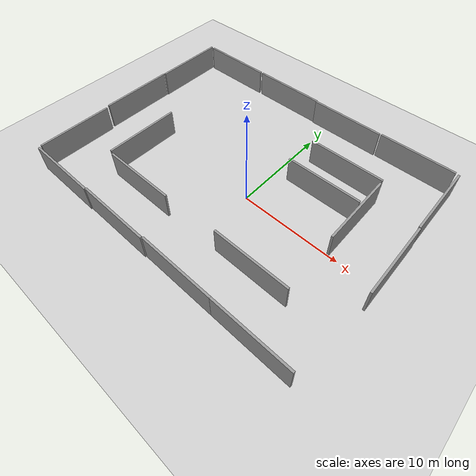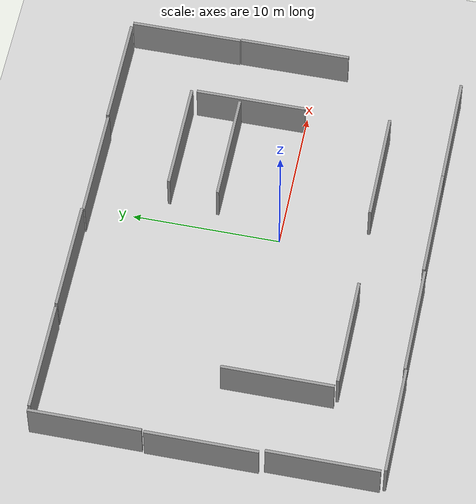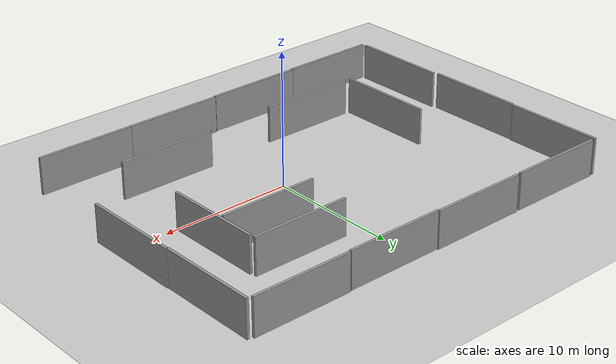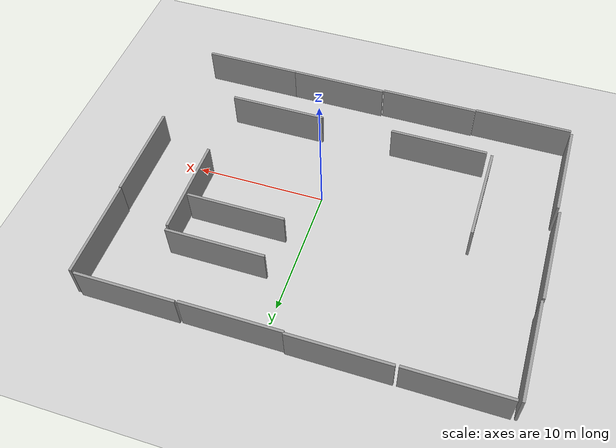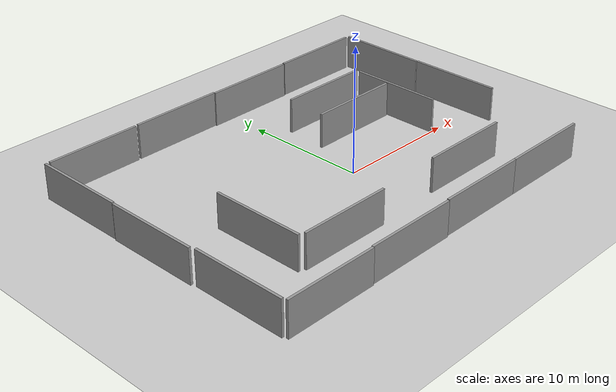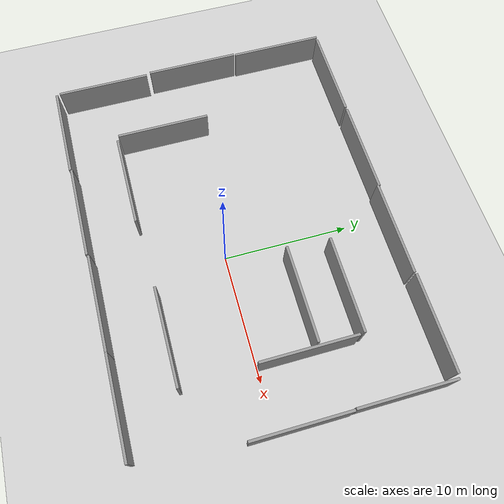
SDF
<sdf version="1.6">
 <world name="default">
  <light name="sun" type="directional">
   <pose>0 0 10 0 -0 0</pose>
   <diffuse>0.8 0.8 0.8 1</diffuse>
   <specular>0.2 0.2 0.2 1</specular>
   <attenuation>
    <range>1000</range>
    <constant>0.9</constant>
    <linear>0.01</linear>
    <quadratic>0.001</quadratic>
   </attenuation>
   <direction>-0.5 0.1 -0.9</direction>
  </light>
  <model name="ground_plane">
   <static>1</static>
   <link name="link">
    <collision name="collision">
     <geometry><plane><normal>0 0 1</normal><size>100 100</size></plane></geometry>
     <surface><friction><ode><mu>100</mu><mu2>50</mu2></ode></friction></surface>
    </collision>
    <visual name="visual">
     <cast_shadows>0</cast_shadows>
     <geometry><plane><normal>0 0 1</normal><size>100 100</size></plane></geometry>
     <material>
      <script><uri>file://media/materials/scripts/gazebo.material</uri><name>Gazebo/Grey</name></script>
     </material>
    </visual>
   </link>
  </model>
  <gravity>0 0 -9.8</gravity>
  <magnetic_field>6e-06 2.3e-05 -4.2e-05</magnetic_field>
  <atmosphere type="adiabatic"/>
  <physics name="default_physics" default="0" type="ode">
   <max_step_size>0.001</max_step_size>
   <real_time_factor>1</real_time_factor>
   <real_time_update_rate>1000</real_time_update_rate>
  </physics>
  <scene><ambient>0.4 0.4 0.4 1</ambient><background>0.7 0.7 0.7 1</background><shadows>1</shadows></scene>
  <audio><device>default</device></audio>
  <spherical_coordinates>
   <surface_model>EARTH_WGS84</surface_model>
   <latitude_deg>0</latitude_deg>
   <longitude_deg>0</longitude_deg>
   <elevation>0</elevation>
   <heading_deg>0</heading_deg>
  </spherical_coordinates>
  <model name="grey_wall">
   <static>1</static>
   <link name="link">
    <pose>0 0 1.4 0 -0 0</pose>
    <collision name="collision"><geometry><box><size>7.5 0.2 2.8</size></box></geometry></collision>
    <visual name="visual">
     <cast_shadows>0</cast_shadows>
     <geometry><box><size>7.5 0.2 2.8</size></box></geometry>
     <material>
      <script>
       <uri>model://grey_wall/materials/scripts</uri>
       <uri>model://grey_wall/materials/textures</uri>
       <name>vrc/grey_wall</name>
      </script>
     </material>
    </visual>
   </link>
   <pose>13.7654 1.64118 0 0 0 -1.56933</pose>
  </model>
  <model name="grey_wall_clone">
   <static>1</static>
   <link name="link">
    <pose>0 0 1.4 0 -0 0</pose>
    <collision name="collision"><geometry><box><size>7.5 0.2 2.8</size></box></geometry></collision>
    <visual name="visual">
     <cast_shadows>0</cast_shadows>
     <geometry><box><size>7.5 0.2 2.8</size></box></geometry>
     <material>
      <script>
       <uri>model://grey_wall/materials/scripts</uri>
       <uri>model://grey_wall/materials/textures</uri>
       <name>vrc/grey_wall</name>
      </script>
     </material>
    </visual>
   </link>
   <pose>5.50074 -5.76204 0 0 -0 0</pose>
  </model>
  <model name="grey_wall_clone_0">
   <static>1</static>
   <link name="link">
    <pose>0 0 1.4 0 -0 0</pose>
    <collision name="collision"><geometry><box><size>7.5 0.2 2.8</size></box></geometry></collision>
    <visual name="visual">
     <cast_shadows>0</cast_shadows>
     <geometry><box><size>7.5 0.2 2.8</size></box></geometry>
     <material>
      <script>
       <uri>model://grey_wall/materials/scripts</uri>
       <uri>model://grey_wall/materials/textures</uri>
       <name>vrc/grey_wall</name>
      </script>
     </material>
    </visual>
   </link>
   <pose>13.6993 9.19185 0 0 0 -1.56933</pose>
  </model>
  <model name="grey_wall_clone_clone">
   <static>1</static>
   <link name="link">
    <pose>0 0 1.4 0 -0 0</pose>
    <collision name="collision"><geometry><box><size>7.5 0.2 2.8</size></box></geometry></collision>
    <visual name="visual">
     <cast_shadows>0</cast_shadows>
     <geometry><box><size>7.5 0.2 2.8</size></box></geometry>
     <material>
      <script>
       <uri>model://grey_wall/materials/scripts</uri>
       <uri>model://grey_wall/materials/textures</uri>
       <name>vrc/grey_wall</name>
      </script>
     </material>
    </visual>
   </link>
   <pose>5.03175 4.47572 0 0 -0 0</pose>
  </model>
  <model name="grey_wall_clone_clone_0">
   <static>1</static>
   <link name="link">
    <pose>0 0 1.4 0 -0 0</pose>
    <collision name="collision"><geometry><box><size>7.5 0.2 2.8</size></box></geometry></collision>
    <visual name="visual">
     <cast_shadows>0</cast_shadows>
     <geometry><box><size>7.5 0.2 2.8</size></box></geometry>
     <material>
      <script>
       <uri>model://grey_wall/materials/scripts</uri>
       <uri>model://grey_wall/materials/textures</uri>
       <name>vrc/grey_wall</name>
      </script>
     </material>
    </visual>
   </link>
   <pose>1.79947 -10.022 0 0 -0 0</pose>
  </model>
  <model name="grey_wall_clone_clone_2">
   <static>1</static>
   <link name="link">
    <pose>0 0 1.4 0 -0 0</pose>
    <collision name="collision"><geometry><box><size>7.5 0.2 2.8</size></box></geometry></collision>
    <visual name="visual">
     <cast_shadows>0</cast_shadows>
     <geometry><box><size>7.5 0.2 2.8</size></box></geometry>
     <material>
      <script>
       <uri>model://grey_wall/materials/scripts</uri>
       <uri>model://grey_wall/materials/textures</uri>
       <name>vrc/grey_wall</name>
      </script>
     </material>
    </visual>
   </link>
   <pose>9.26843 -10.0222 0 0 -0 0</pose>
  </model>
  <model name="grey_wall_clone_clone_3">
   <static>1</static>
   <link name="link">
    <pose>0 0 1.4 0 -0 0</pose>
    <collision name="collision"><geometry><box><size>7.5 0.2 2.8</size></box></geometry></collision>
    <visual name="visual">
     <cast_shadows>0</cast_shadows>
     <geometry><box><size>7.5 0.2 2.8</size></box></geometry>
     <material>
      <script>
       <uri>model://grey_wall/materials/scripts</uri>
       <uri>model://grey_wall/materials/textures</uri>
       <name>vrc/grey_wall</name>
      </script>
     </material>
    </visual>
   </link>
   <pose>5.24278 7.84795 0 0 -0 0</pose>
  </model>
  <model name="grey_wall_clone_clone_4">
   <static>1</static>
   <link name="link">
    <pose>0 0 1.4 0 -0 0</pose>
    <collision name="collision"><geometry><box><size>7.5 0.2 2.8</size></box></geometry></collision>
    <visual name="visual">
     <cast_shadows>0</cast_shadows>
     <geometry><box><size>7.5 0.2 2.8</size></box></geometry>
     <material>
      <script>
       <uri>model://grey_wall/materials/scripts</uri>
       <uri>model://grey_wall/materials/textures</uri>
       <name>vrc/grey_wall</name>
      </script>
     </material>
    </visual>
   </link>
   <pose>-7.52636 -6.03946 0 0 -0 0</pose>
  </model>
  <model name="grey_wall_clone_1">
   <static>1</static>
   <link name="link">
    <pose>0 0 1.4 0 -0 0</pose>
    <collision name="collision"><geometry><box><size>7.5 0.2 2.8</size></box></geometry></collision>
    <visual name="visual">
     <cast_shadows>0</cast_shadows>
     <geometry><box><size>7.5 0.2 2.8</size></box></geometry>
     <material>
      <script>
       <uri>model://grey_wall/materials/scripts</uri>
       <uri>model://grey_wall/materials/textures</uri>
       <name>vrc/grey_wall</name>
      </script>
     </material>
    </visual>
   </link>
   <pose>-17.1488 -6.17075 0 0 0 -1.56933</pose>
  </model>
  <model name="grey_wall_clone_2">
   <static>1</static>
   <link name="link">
    <pose>0 0 1.4 0 -0 0</pose>
    <collision name="collision"><geometry><box><size>7.5 0.2 2.8</size></box></geometry></collision>
    <visual name="visual">
     <cast_shadows>0</cast_shadows>
     <geometry><box><size>7.5 0.2 2.8</size></box></geometry>
     <material>
      <script>
       <uri>model://grey_wall/materials/scripts</uri>
       <uri>model://grey_wall/materials/textures</uri>
       <name>vrc/grey_wall</name>
      </script>
     </material>
    </visual>
   </link>
   <pose>-17.3279 1.67152 0 0 0 -1.56933</pose>
  </model>
  <model name="grey_wall_clone_clone_0_clone">
   <static>1</static>
   <link name="link">
    <pose>0 0 1.4 0 -0 0</pose>
    <collision name="collision"><geometry><box><size>7.5 0.2 2.8</size></box></geometry></collision>
    <visual name="visual">
     <cast_shadows>0</cast_shadows>
     <geometry><box><size>7.5 0.2 2.8</size></box></geometry>
     <material>
      <script>
       <uri>model://grey_wall/materials/scripts</uri>
       <uri>model://grey_wall/materials/textures</uri>
       <name>vrc/grey_wall</name>
      </script>
     </material>
    </visual>
   </link>
   <pose>-5.78461 -10.1136 0 0 -0 0</pose>
  </model>
  <model name="grey_wall_clone_clone_0_clone_0">
   <static>1</static>
   <link name="link">
    <pose>0 0 1.4 0 -0 0</pose>
    <collision name="collision"><geometry><box><size>7.5 0.2 2.8</size></box></geometry></collision>
    <visual name="visual">
     <cast_shadows>0</cast_shadows>
     <geometry><box><size>7.5 0.2 2.8</size></box></geometry>
     <material>
      <script>
       <uri>model://grey_wall/materials/scripts</uri>
       <uri>model://grey_wall/materials/textures</uri>
       <name>vrc/grey_wall</name>
      </script>
     </material>
    </visual>
   </link>
   <pose>-13.3118 -10.1957 0 0 -0 0</pose>
  </model>
  <model name="grey_wall_clone_2_clone">
   <static>1</static>
   <link name="link">
    <pose>0 0 1.4 0 -0 0</pose>
    <collision name="collision"><geometry><box><size>7.5 0.2 2.8</size></box></geometry></collision>
    <visual name="visual">
     <cast_shadows>0</cast_shadows>
     <geometry><box><size>7.5 0.2 2.8</size></box></geometry>
     <material>
      <script>
       <uri>model://grey_wall/materials/scripts</uri>
       <uri>model://grey_wall/materials/textures</uri>
       <name>vrc/grey_wall</name>
      </script>
     </material>
    </visual>
   </link>
   <pose>-17.2623 9.3101 0 0 0 -1.56933</pose>
  </model>
  <model name="grey_wall_clone_clone_4_clone">
   <static>1</static>
   <link name="link">
    <pose>0 0 1.4 0 -0 0</pose>
    <collision name="collision"><geometry><box><size>7.5 0.2 2.8</size></box></geometry></collision>
    <visual name="visual">
     <cast_shadows>0</cast_shadows>
     <geometry><box><size>7.5 0.2 2.8</size></box></geometry>
     <material>
      <script>
       <uri>model://grey_wall/materials/scripts</uri>
       <uri>model://grey_wall/materials/textures</uri>
       <name>vrc/grey_wall</name>
      </script>
     </material>
    </visual>
   </link>
   <pose>-13.2012 13.0123 0 0 -0 0</pose>
  </model>
  <model name="grey_wall_clone_clone_4_clone_0">
   <static>1</static>
   <link name="link">
    <pose>0 0 1.4 0 -0 0</pose>
    <collision name="collision"><geometry><box><size>7.5 0.2 2.8</size></box></geometry></collision>
    <visual name="visual">
     <cast_shadows>0</cast_shadows>
     <geometry><box><size>7.5 0.2 2.8</size></box></geometry>
     <material>
      <script>
       <uri>model://grey_wall/materials/scripts</uri>
       <uri>model://grey_wall/materials/textures</uri>
       <name>vrc/grey_wall</name>
      </script>
     </material>
    </visual>
   </link>
   <pose>-5.46662 13.0387 0 0 -0 0</pose>
  </model>
  <model name="grey_wall_clone_clone_4_clone_1">
   <static>1</static>
   <link name="link">
    <pose>0 0 1.4 0 -0 0</pose>
    <collision name="collision"><geometry><box><size>7.5 0.2 2.8</size></box></geometry></collision>
    <visual name="visual">
     <cast_shadows>0</cast_shadows>
     <geometry><box><size>7.5 0.2 2.8</size></box></geometry>
     <material>
      <script>
       <uri>model://grey_wall/materials/scripts</uri>
       <uri>model://grey_wall/materials/textures</uri>
       <name>vrc/grey_wall</name>
      </script>
     </material>
    </visual>
   </link>
   <pose>1.9924 12.937 0 0 -0 0</pose>
  </model>
  <model name="grey_wall_clone_clone_4_clone_2">
   <static>1</static>
   <link name="link">
    <pose>0 0 1.4 0 -0 0</pose>
    <collision name="collision"><geometry><box><size>7.5 0.2 2.8</size></box></geometry></collision>
    <visual name="visual">
     <cast_shadows>0</cast_shadows>
     <geometry><box><size>7.5 0.2 2.8</size></box></geometry>
     <material>
      <script>
       <uri>model://grey_wall/materials/scripts</uri>
       <uri>model://grey_wall/materials/textures</uri>
       <name>vrc/grey_wall</name>
      </script>
     </material>
    </visual>
   </link>
   <pose>9.62857 13.0096 0 0 -0 0</pose>
  </model>
  <model name="grey_wall_clone_3">
   <static>1</static>
   <link name="link">
    <pose>0 0 1.4 0 -0 0</pose>
    <collision name="collision"><geometry><box><size>7.5 0.2 2.8</size></box></geometry></collision>
    <visual name="visual">
     <cast_shadows>0</cast_shadows>
     <geometry><box><size>7.5 0.2 2.8</size></box></geometry>
     <material>
      <script>
       <uri>model://grey_wall/materials/scripts</uri>
       <uri>model://grey_wall/materials/textures</uri>
       <name>vrc/grey_wall</name>
      </script>
     </material>
    </visual>
   </link>
   <pose>9.02177 3.74436 0 0 0 -1.56933</pose>
  </model>
  <model name="grey_wall_clone_3_clone">
   <static>1</static>
   <link name="link">
    <pose>0 0 1.4 0 -0 0</pose>
    <collision name="collision"><geometry><box><size>7.5 0.2 2.8</size></box></geometry></collision>
    <visual name="visual">
     <cast_shadows>0</cast_shadows>
     <geometry><box><size>7.5 0.2 2.8</size></box></geometry>
     <material>
      <script>
       <uri>model://grey_wall/materials/scripts</uri>
       <uri>model://grey_wall/materials/textures</uri>
       <name>vrc/grey_wall</name>
      </script>
     </material>
    </visual>
   </link>
   <pose>-11.695 -2.15594 0 0 0 -1.56933</pose>
  </model>
 </world>
</sdf>
